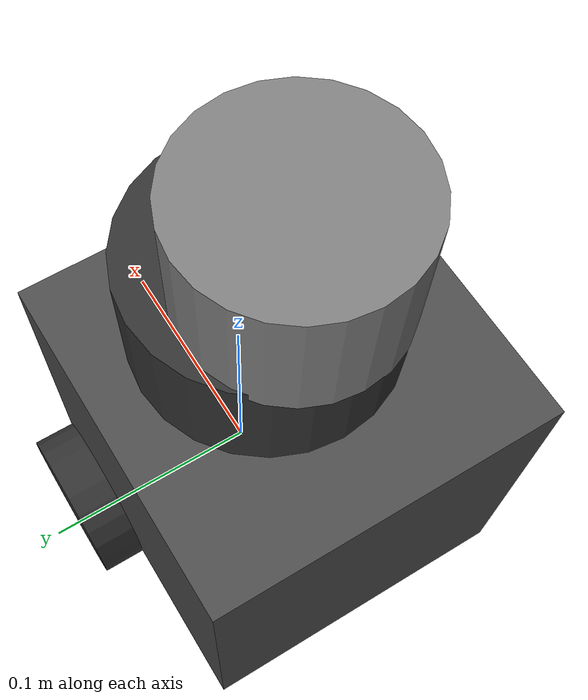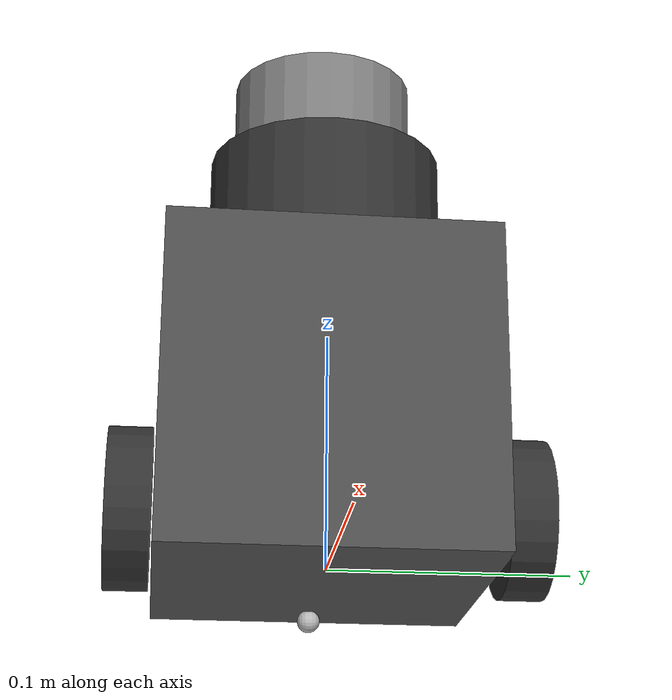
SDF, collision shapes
<?xml version="1.0" ?>
<sdf version="1.5">
  <model name="turtlebot3_burger">
    <pose>0.0 0.0 0.0 0.0 0.0 0.0</pose>

    <link name="base_footprint"/>

    <link name="base_link">

      <inertial>
        <pose>-0.032 0 0.070 0 0 0</pose>
        <inertia>
          <ixx>7.2397393e-01</ixx>
          <ixy>4.686399e-10</ixy>
          <ixz>-1.09525703e-08</ixz>
          <iyy>7.2397393e-01</iyy>
          <iyz>2.8582649e-09</iyz>
          <izz>6.53050163e-01</izz>
        </inertia>
        <mass>8.2573504e-01</mass>
      </inertial>

      <collision name="base_collision">
        <pose>-0.032 0 0.070 0 0 0</pose>
        <geometry>
          <box>
            <size>0.140 0.140 0.140</size>
          </box>
        </geometry>
      </collision>

      <visual name="base_visual">
        <pose>-0.032 0 0 0 0 0</pose>
        <geometry>
          <mesh>
            <uri>model://turtlebot3_common/meshes/bases/burger_base.stl</uri>
            <scale>0.001 0.001 0.001</scale>
          </mesh>
        </geometry>
        <material>
          <ambient>0.3 0.3 0.3 1.0</ambient>
          <diffuse>0.3 0.3 0.3 1.0</diffuse>
        </material>
      </visual>
    </link>

    <link name="imu_link">
      <sensor name="tb3_imu" type="imu">
        <always_on>true</always_on>
        <update_rate>200</update_rate>
        <imu>
          <angular_velocity>
            <x>
              <noise type="gaussian">
                <mean>0.0</mean>
                <stddev>2e-4</stddev>
              </noise>
            </x>
            <y>
              <noise type="gaussian">
                <mean>0.0</mean>
                <stddev>2e-4</stddev>
              </noise>
            </y>
            <z>
              <noise type="gaussian">
                <mean>0.0</mean>
                <stddev>2e-4</stddev>
              </noise>
            </z>
          </angular_velocity>
          <linear_acceleration>
            <x>
              <noise type="gaussian">
                <mean>0.0</mean>
                <stddev>1.7e-2</stddev>
              </noise>
            </x>
            <y>
              <noise type="gaussian">
                <mean>0.0</mean>
                <stddev>1.7e-2</stddev>
              </noise>
            </y>
            <z>
              <noise type="gaussian">
                <mean>0.0</mean>
                <stddev>1.7e-2</stddev>
              </noise>
            </z>
          </linear_acceleration>
        </imu>
        <plugin name="turtlebot3_imu" filename="libgazebo_ros_imu_sensor.so">
          <ros>
            <remapping>~/out:=imu</remapping>
          </ros>
        </plugin>
      </sensor>
    </link>

    <link name="base_scan">
      <inertial>
        <pose>-0.020 0 0.161 0 0 0</pose>
        <inertia>
          <ixx>0.001</ixx>
          <ixy>0.000</ixy>
          <ixz>0.000</ixz>
          <iyy>0.001</iyy>
          <iyz>0.000</iyz>
          <izz>0.001</izz>
        </inertia>
        <mass>0.114</mass>
      </inertial>

      <collision name="lidar_sensor_collision">
        <pose>-0.020 0 0.161 0 0 0</pose>
        <geometry>
          <cylinder>
            <radius>0.0508</radius>
            <length>0.055</length>
          </cylinder>
        </geometry>
      </collision>

      <visual name="lidar_sensor_visual">
        <pose>-0.032 0 0.171 0 0 0</pose>
        <geometry>
          <mesh>
            <uri>model://turtlebot3_common/meshes/sensors/lds.stl</uri>
            <scale>0.001 0.001 0.001</scale>
          </mesh>
        </geometry>
        <material>
          <ambient>0.2 0.2 0.2 1.0</ambient>
          <diffuse>0.2 0.2 0.2 1.0</diffuse>
        </material>
      </visual>

      <sensor name="hls_lfcd_lds" type="ray">
        <always_on>true</always_on>
        <visualize>true</visualize>
        <pose>-0.032 0 0.171 0 0 0</pose>
        <update_rate>5</update_rate>
        <ray>
          <scan>
            <horizontal>
              <samples>360</samples>
              <resolution>1.000000</resolution>
              <min_angle>0.000000</min_angle>
              <max_angle>6.280000</max_angle>
            </horizontal>
          </scan>
          <range>
            <min>0.120000</min>
            <max>3.5</max>
            <resolution>0.015000</resolution>
          </range>
          <noise>
            <type>gaussian</type>
            <mean>0.0</mean>
            <stddev>0.01</stddev>
          </noise>
        </ray>
        <plugin name="turtlebot3_laserscan" filename="libgazebo_ros_ray_sensor.so">
          <ros>
            <remapping>~/out:=scan</remapping>
          </ros>
          <output_type>sensor_msgs/LaserScan</output_type>
          <frame_name>base_scan</frame_name>
        </plugin>
      </sensor>
    </link>

    <link name="velodyne_link">
      <pose>-0.035 0 0.21 0 0 0</pose>
      <visual name="velodyne_visual">
        <geometry>
          <cylinder><radius>0.04</radius><length>0.05</length></cylinder>
        </geometry>
        <material><ambient>0.5 0.5 0.5 1</ambient><diffuse>0.5 0.5 0.5 1</diffuse></material>
      </visual>
      <collision name="velodyne_collision">
        <geometry>
          <cylinder><radius>0.04</radius><length>0.05</length></cylinder>
        </geometry>
      </collision>
      <inertial>
        <mass>1.2</mass>
        <inertia>
          <ixx>0.01</ixx><iyy>0.01</iyy><izz>0.02</izz>
          <ixy>0</ixy><ixz>0</ixz><iyz>0</iyz>
        </inertia>
      </inertial>
      <sensor name="velodyne_sensor" type="ray">
        <update_rate>10</update_rate>
        <ray>
          <scan>
            <horizontal><samples>1800</samples><min_angle>0</min_angle><max_angle>6.283185307</max_angle></horizontal>
            <vertical><samples>16</samples><min_angle>-0.261799</min_angle><max_angle>0.261799</max_angle></vertical>
          </scan>
          <range><min>0.1</min><max>100.0</max><resolution>0.01</resolution></range>
        </ray>
        <plugin name="gazebo_ros_velodyne" filename="libgazebo_ros_velodyne_laser.so">
          <ros><namespace>/velodyne</namespace></ros>
          <topicName>/velodyne_points</topicName>
          <frameName>velodyne_link</frameName>
          <hz>10</hz>
          <samples>440</samples>
          <organize_cloud>false</organize_cloud>
        </plugin>
      </sensor>
    </link>

    <link name="wheel_left_link">

      <inertial>
        <pose>0 0.08 0.023 -1.57 0 0</pose>
        <inertia>
          <ixx>1.8158194e-03</ixx>
          <ixy>-9.3392e-12</ixy>
          <ixz>1.04909e-11</ixz>
          <iyy>3.2922126e-03</iyy>
          <iyz>5.75694e-11</iyz>
          <izz>1.8158194e-03</izz>
        </inertia>
        <mass>2.8498940e-02</mass>
      </inertial>

      <collision name="wheel_left_collision">
        <pose>0 0.08 0.023 -1.57 0 0</pose>
        <geometry>
          <cylinder>
            <radius>0.033</radius>
            <length>0.018</length>
          </cylinder>
        </geometry>
        <surface>
          <!-- This friction pamareter don't contain reliable data!! -->
          <friction>
            <ode>
              <mu>100000.0</mu>
              <mu2>100000.0</mu2>
              <fdir1>0 0 0</fdir1>
              <slip1>0.0</slip1>
              <slip2>0.0</slip2>
            </ode>
          </friction>
          <contact>
            <ode>
              <soft_cfm>0</soft_cfm>
              <soft_erp>0.2</soft_erp>
              <kp>1e+5</kp>
              <kd>1</kd>
              <max_vel>0.01</max_vel>
              <min_depth>0.001</min_depth>
            </ode>
          </contact>
        </surface>
      </collision>

      <visual name="wheel_left_visual">
        <pose>0 0.08 0.023 0 0 0</pose>
        <geometry>
          <mesh>
            <uri>model://turtlebot3_common/meshes/wheels/left_tire.stl</uri>
            <scale>0.001 0.001 0.001</scale>
          </mesh>
        </geometry>
        <material>
          <ambient>0.2 0.2 0.2 1.0</ambient>
          <diffuse>0.2 0.2 0.2 1.0</diffuse>
        </material>
      </visual>
    </link>

    <link name="wheel_right_link">

      <inertial>
        <pose>0.0 -0.08 0.023 -1.57 0 0</pose>
        <inertia>
          <ixx>1.8158194e-03</ixx>
          <ixy>-9.3392e-12</ixy>
          <ixz>1.04909e-11</ixz>
          <iyy>3.2922126e-03</iyy>
          <iyz>5.75694e-11</iyz>
          <izz>1.8158194e-03</izz>
        </inertia>
        <mass>2.8498940e-02</mass>
      </inertial>

      <collision name="wheel_right_collision">
        <pose>0.0 -0.08 0.023 -1.57 0 0</pose>
        <geometry>
          <cylinder>
            <radius>0.033</radius>
            <length>0.018</length>
          </cylinder>
        </geometry>
        <surface>
          <!-- This friction pamareter don't contain reliable data!! -->
          <friction>
            <ode>
              <mu>100000.0</mu>
              <mu2>100000.0</mu2>
              <fdir1>0 0 0</fdir1>
              <slip1>0.0</slip1>
              <slip2>0.0</slip2>
            </ode>
          </friction>
          <contact>
            <ode>
              <soft_cfm>0</soft_cfm>
              <soft_erp>0.2</soft_erp>
              <kp>1e+5</kp>
              <kd>1</kd>
              <max_vel>0.01</max_vel>
              <min_depth>0.001</min_depth>
            </ode>
          </contact>
        </surface>
      </collision>

      <visual name="wheel_right_visual">
        <pose>0.0 -0.08 0.023 0 0 0</pose>
        <geometry>
          <mesh>
            <uri>model://turtlebot3_common/meshes/wheels/right_tire.stl</uri>
            <scale>0.001 0.001 0.001</scale>
          </mesh>
        </geometry>
        <material>
          <ambient>0.2 0.2 0.2 1.0</ambient>
          <diffuse>0.2 0.2 0.2 1.0</diffuse>
        </material>
      </visual>
    </link>

    <link name='caster_back_link'>
      <pose>-0.081 0 -0.004 -1.57 0 0</pose>
      <inertial>
        <mass>0.005</mass>
        <inertia>
          <ixx>0.001</ixx>
          <ixy>0.000</ixy>
          <ixz>0.000</ixz>
          <iyy>0.001</iyy>
          <iyz>0.000</iyz>
          <izz>0.001</izz>
        </inertia>
      </inertial>
      <collision name='collision'>
        <geometry>
          <sphere>
            <radius>0.005000</radius>
          </sphere>
        </geometry>
        <surface>
          <contact>
            <ode>
              <soft_cfm>0</soft_cfm>
              <soft_erp>0.2</soft_erp>
              <kp>1e+5</kp>
              <kd>1</kd>
              <max_vel>0.01</max_vel>
              <min_depth>0.001</min_depth>
            </ode>
          </contact>
        </surface>
      </collision>
    </link>

    <joint name="base_joint" type="fixed">
      <parent>base_footprint</parent>
      <child>base_link</child>
      <pose>0.0 0.0 0.010 0 0 0</pose>
    </joint>

    <joint name="wheel_left_joint" type="revolute">
      <parent>base_link</parent>
      <child>wheel_left_link</child>
      <pose>0.0 0.08 0.023 -1.57 0 0</pose>
      <axis>
        <xyz>0 0 1</xyz>
      </axis>
    </joint>

    <joint name="wheel_right_joint" type="revolute">
      <parent>base_link</parent>
      <child>wheel_right_link</child>
      <pose>0.0 -0.08 0.023 -1.57 0 0</pose>
      <axis>
        <xyz>0 0 1</xyz>
      </axis>
    </joint>

    <joint name='caster_back_joint' type='ball'>
      <parent>base_link</parent>
      <child>caster_back_link</child>
    </joint>

    <joint name="imu_joint" type="fixed">
      <parent>base_link</parent>
      <child>imu_link</child>
      <pose>-0.032 0 0.068 0 0 0</pose>
      <axis>
        <xyz>0 0 1</xyz>
      </axis>
    </joint>

    <joint name="lidar_joint" type="fixed">
      <parent>base_link</parent>
      <child>base_scan</child>
      <pose>-0.032 0 0.171 0 0 0</pose>
      <axis>
        <xyz>0 0 1</xyz>
      </axis>
    </joint>
    <joint name="velodyne_joint" type="fixed">
      <parent>base_link</parent>        <!-- 로봇 기준 링크 -->
      <child>velodyne_link</child>     <!-- 센서 링크 -->
      <pose>10 0.01 0.25 0 0 0</pose>      <!-- 부모 기준 센서 위치 -->
    </joint>
    <plugin name="turtlebot3_diff_drive" filename="libgazebo_ros_diff_drive.so">

      <ros>
      </ros>

      <update_rate>30</update_rate>

      <!-- wheels -->
      <left_joint>wheel_left_joint</left_joint>
      <right_joint>wheel_right_joint</right_joint>

      <!-- kinematics -->
      <wheel_separation>0.160</wheel_separation>
      <wheel_diameter>0.066</wheel_diameter>

      <!-- limits -->
      <max_wheel_torque>20</max_wheel_torque>
      <max_wheel_acceleration>1.0</max_wheel_acceleration>

      <command_topic>cmd_vel</command_topic>

      <!-- output -->
      <publish_odom>true</publish_odom>
      <publish_odom_tf>true</publish_odom_tf>
      <publish_wheel_tf>false</publish_wheel_tf>

      <odometry_topic>odom</odometry_topic>
      <odometry_frame>odom</odometry_frame>
      <robot_base_frame>base_footprint</robot_base_frame>

    </plugin>

    <plugin name="turtlebot3_joint_state" filename="libgazebo_ros_joint_state_publisher.so">
      <ros>
        <remapping>~/out:=joint_states</remapping>
      </ros>
      <update_rate>30</update_rate>
      <joint_name>wheel_left_joint</joint_name>
      <joint_name>wheel_right_joint</joint_name>
    </plugin>
  </model>
</sdf>
